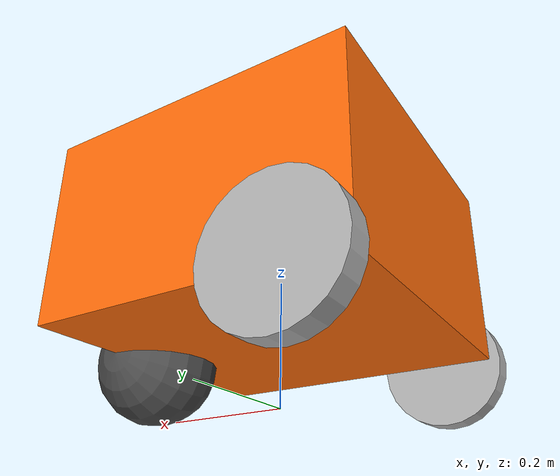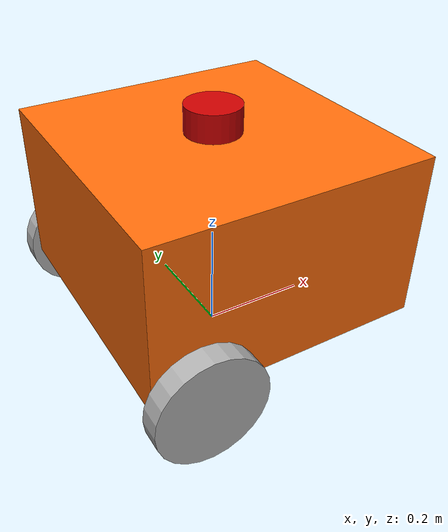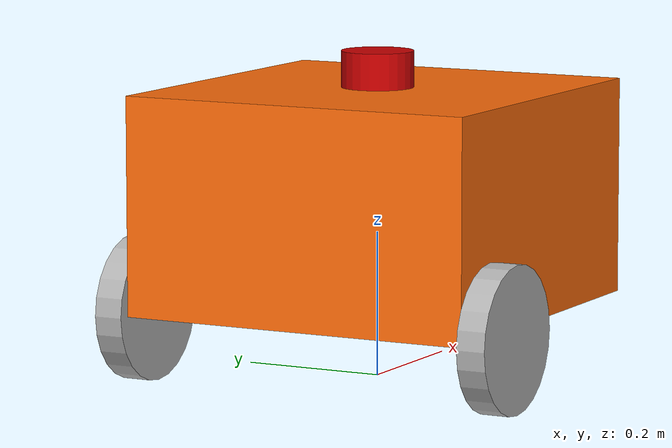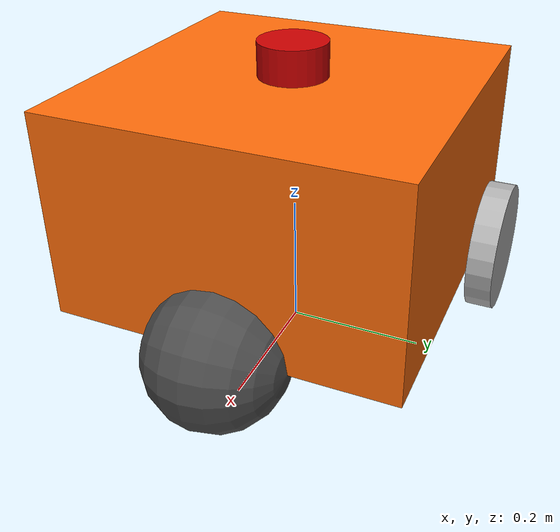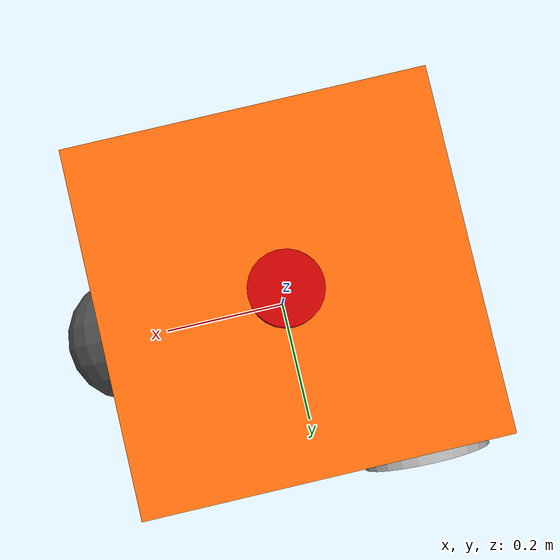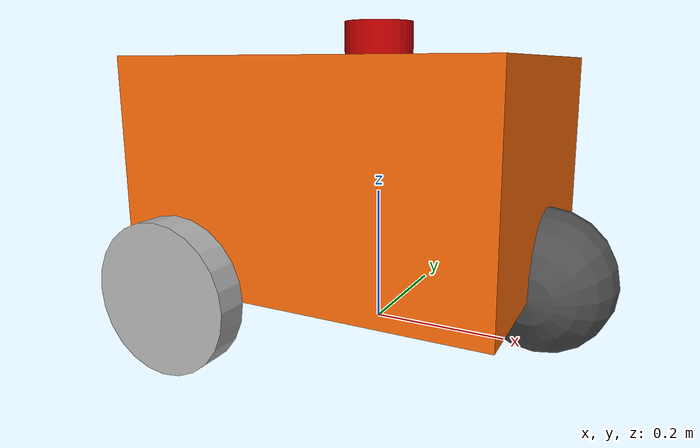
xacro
<?xml version="1.0"?>
<robot xmlns:xacro="http://www.ros.org/wiki/xacro" name="wheelybot">

  <!-- Wheelybot description -->
  <xacro:include filename="$(find wheelybot_description)/urdf/wheelybot.xacro"/>

  <!-- Bring in Gazebo information -->
  <xacro:include filename="$(find wheelybot_sim)/urdf/wheelybot.gazebo" />
  <xacro:include filename="$(find wheelybot_sim)/urdf/lidar.gazebo" />

  <!-- Bring in control data -->
  <xacro:include filename="$(find wheelybot_control)/urdf/ros2_control.xacro" />

</robot>

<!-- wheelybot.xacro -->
<robot xmlns:xacro="http://www.ros.org/wiki/xacro" name="wheelybot">

  <xacro:property name="big_radius" value="0.1" />
  <xacro:property name="small_radius" value="0.1" />
  <xacro:property name="wheel_thickness" value="0.04" />
  <xacro:property name="chassis_length" value="0.5" />
  <xacro:property name="chassis_width" value="0.5" />
  <xacro:property name="chassis_height" value="0.3" />

  <xacro:property name="chassis_mass" value="5.0" />
  <xacro:property name="wheel_mass" value="0.5" />
  <xacro:property name="caster_mass" value="0.5" />

  <!-- Rviz colors -->
  <xacro:include filename="$(find wheelybot_description)/urdf/materials.xacro"/>

  <!-- Base  -->
  <link name="base_link"></link>

  <joint name="base_to_chassis" type="fixed">
    <origin xyz="0 0 ${big_radius+chassis_height/2}" rpy="0 0 0"/>
    <parent link="base_link"/>
    <child link="chassis"/>
  </joint>

  <!-- Chassis -->
  <link name="chassis">

    <visual>
      <origin xyz="0 0 0" rpy="0 0 0"/>
      <geometry>
        <box size="${chassis_length} ${chassis_width} ${chassis_height}"/>
      </geometry>
      <material name="orange"/>
    </visual>

    <collision>
      <origin xyz="0 0 0" rpy="0 0 0"/>
      <geometry>
        <box size="${chassis_length} ${chassis_width} ${chassis_height}"/>
      </geometry>
    </collision>

    <inertial>
      <origin xyz="0 0 0" rpy="0 0 0"/>
      <mass value="${chassis_mass}"/>
      <inertia
          ixx="${chassis_mass / 12.0 * (chassis_width*chassis_width + chassis_height*chassis_height)}" ixy="0.0" ixz="0.0"
          iyy="${chassis_mass / 12.0 * (chassis_height*chassis_height + chassis_width*chassis_width)}" iyz="0.0"
          izz="${chassis_mass / 12.0 * (chassis_width*chassis_width + chassis_width*chassis_width)}"/>
    </inertial>

  </link>

  <!-- Left Wheel -->
  <link name="left_wheel">

    <visual>
      <origin rpy="0 0 0" xyz="0 0 0"/>
      <geometry>
        <cylinder length="${wheel_thickness}" radius="${big_radius}"/>
      </geometry>
      <material name="light_grey"/>
    </visual>

    <collision>
      <origin xyz="0 0 0" rpy="0 0 0"/>
      <geometry>
        <cylinder length="${wheel_thickness}" radius="${big_radius}"/>
      </geometry>
    </collision>

    <inertial>
      <origin xyz="0 0 0" rpy="0 0 0"/>
      <mass value="${wheel_mass}"/>
      <inertia
          ixx="${wheel_mass / 12.0 * wheel_thickness*wheel_thickness}" ixy="0.0" ixz="0.0"
          iyy="0" iyz="0.0"
          izz="${wheel_mass / 12.0 * wheel_thickness*wheel_thickness}"/>
    </inertial>

  </link>

  <joint name="left_wheel_joint" type="continuous">
    <parent link="base_link"/>
    <child link="left_wheel"/>
    <origin xyz="${-chassis_length/3} ${chassis_width/2+wheel_thickness/2+0.001} ${big_radius}" rpy="${-pi/2} 0 0"/>
    <axis xyz="0 0 1"/>
  </joint>

  <!-- Right Wheel -->
  <link name="right_wheel">

    <visual>
      <origin rpy="0 0 0" xyz="0 0 0"/>
      <geometry>
        <cylinder length="${wheel_thickness}" radius="${big_radius}"/>
      </geometry>
      <material name="light_grey"/>
    </visual>

    <collision>
      <origin xyz="0 0 0" rpy="0 0 0"/>
      <geometry>
        <cylinder length="${wheel_thickness}" radius="${big_radius}"/>
      </geometry>
    </collision>

    <inertial>
      <origin xyz="0 0 0" rpy="0 0 0"/>
      <mass value="${wheel_mass}"/>
      <inertia
          ixx="${wheel_mass / 12.0 * wheel_thickness*wheel_thickness}" ixy="0.0" ixz="0.0"
          iyy="0" iyz="0.0"
          izz="${wheel_mass / 12.0 * wheel_thickness*wheel_thickness}"/>
    </inertial>

  </link>

  <joint name="right_wheel_joint" type="continuous">
    <parent link="base_link"/>
    <child link="right_wheel"/>
    <origin xyz="${-chassis_length/3} ${-chassis_width/2-wheel_thickness/2-0.001} ${big_radius}" rpy="${pi/2} 0 0"/>
    <axis xyz="0 0 -1"/>
  </joint>

  <!-- Caster ball -->
  <link name="caster_ball">

    <visual>
      <origin rpy="0 0 0" xyz="0 0 0"/>
      <geometry>
        <sphere radius="${small_radius}"/>
      </geometry>
      <material name="dark_grey"/>
    </visual>

    <collision>
      <origin xyz="0 0 0" rpy="0 0 0"/>
      <geometry>
        <sphere radius="${small_radius}"/>
      </geometry>
    </collision>

    <inertial>
      <origin xyz="0 0 0" rpy="0 0 0"/>
      <mass value="${caster_mass}"/>
      <inertia
          ixx="${2/5.0 * caster_mass * small_radius*small_radius}" ixy="0.0" ixz="0.0"
          iyy="${2/5.0 * caster_mass * small_radius*small_radius}" iyz="0.0"
          izz="${2/5.0 * caster_mass * small_radius*small_radius}"/>
    </inertial>

  </link>

  <joint name="caster_ball_joint" type="fixed">
    <parent link="base_link"/>
    <child link="caster_ball"/>
    <origin xyz="${chassis_length/2} 0 ${small_radius}" rpy="${pi/2} 0 0"/>
  </joint>

  <!-- Sensor descriptions -->
  <xacro:include filename="$(find wheelybot_description)/urdf/lidar.xacro"/>

</robot>

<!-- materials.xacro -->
<robot>

  <material name="black">
    <color rgba="0.0 0.0 0.0 1.0"/>
  </material>

  <material name="white">
    <color rgba="1.0 1.0 1.0 1.0"/>
  </material>

  <material name="dark_grey">
    <color rgba="0.3 0.3 0.3 1.0"/>
  </material>

  <material name="light_grey">
    <color rgba="0.7 0.7 0.7 1.0"/>
  </material>

  <material name="red">
    <color rgba="0.8 0.0 0.0 1.0"/>
  </material>

  <material name="green">
    <color rgba="0.0 0.8 0.0 1.0"/>
  </material>

  <material name="blue">
    <color rgba="0.0 0.0 0.8 1.0"/>
  </material>

  <material name="orange">
    <color rgba="${255/255} ${108/255} ${10/255} 1.0"/>
  </material>

  <material name="brown">
    <color rgba="${222/255} ${207/255} ${195/255} 1.0"/>
  </material>

</robot>

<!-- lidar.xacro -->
<robot xmlns:xacro="http://www.ros.org/wiki/xacro" >

  <xacro:property name="lidar_radius" value="0.05" />
  <xacro:property name="lidar_height" value="0.05" />
  <xacro:property name="lidar_mass" value="0.0" />

  <!-- Laser -->
  <link name="laser">

    <visual>
      <geometry>
        <cylinder length="${lidar_height}" radius="${lidar_radius}"/>
      </geometry>
      <material name="red"/>
    </visual>

    <collision>
      <geometry>
        <cylinder length="${lidar_height}" radius="${lidar_radius}"/>
      </geometry>
    </collision>

    <inertial>
      <origin xyz="0 0 0" rpy="0 0 0"/>
      <mass value="${lidar_mass}"/>
      <inertia
          ixx="${lidar_mass / 12.0 * lidar_height*lidar_height}" ixy="0.0" ixz="0.0"
          iyy="0" iyz="0.0"
          izz="${lidar_mass / 12.0 * lidar_height*lidar_height}"/>
    </inertial>

  </link>

  <joint name="chassis_to_laser" type="fixed">
    <parent link="chassis"/>
    <child link="laser"/>
    <origin xyz="0 0 ${chassis_height/2 + lidar_height/2}" rpy="0 0 0"/>
  </joint>

</robot>
